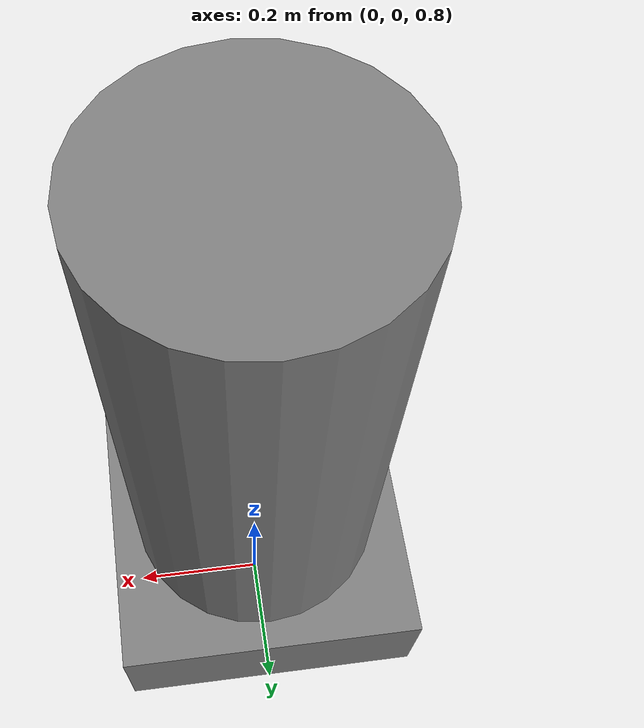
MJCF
<mujoco model="strike_target">
    <worldbody>
        <body name="target" pos="0 0 0.9">
            <freejoint name="root"/>
            <geom name="target_body" type="cylinder" fromto="0 0 0 0 0 0.9" size="0.18" density="400"/>
            <geom name="target_base" type="box" pos="0 0 0.08" size="0.22 0.22 0.08" density="300"/>
        </body>
    </worldbody>
</mujoco>
